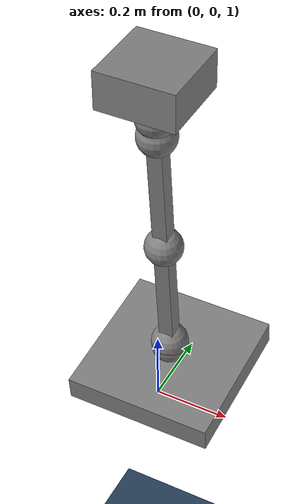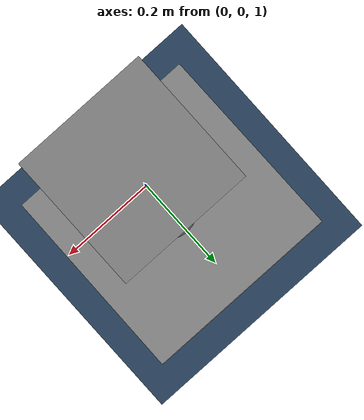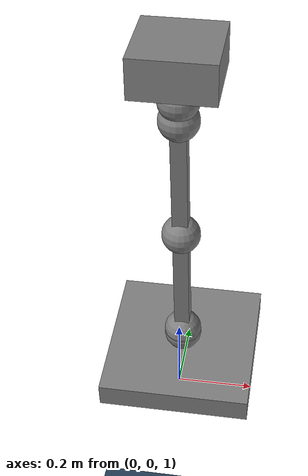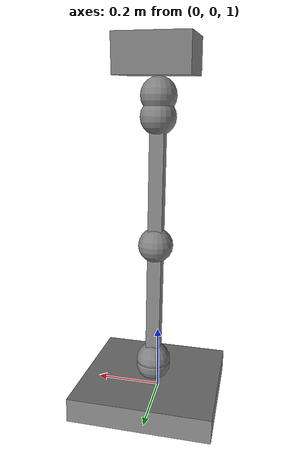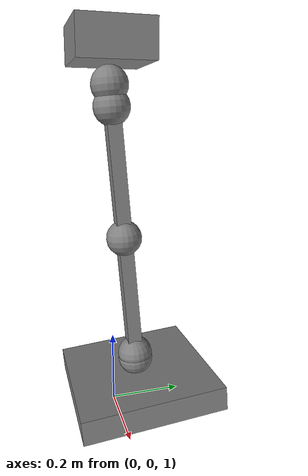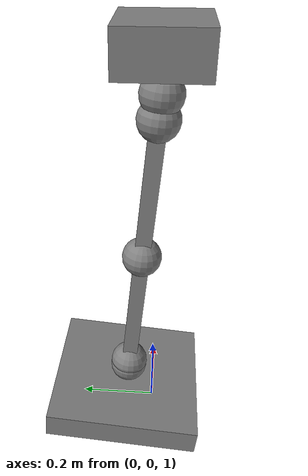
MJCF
<mujoco model="dummy arm scene">

  <include file="setting_option.xml"/>

  <statistic center="0 0 0.2" extent="0.6" />

  <visual>
    <headlight diffuse="0.6 0.6 0.6" ambient="0.3 0.3 0.3" specular="0 0 0" />
    <global azimuth="160" elevation="-20" />
    <rgba haze=".3 .3 .3 1" />
    <quality offsamples="0" />
  </visual>

  <asset>
    <texture type="skybox" builtin="gradient" rgb1="0.6 0.6 0.6" rgb2="0 0 0" width="512" height="512" />
    <texture type="2d" name="groundplane" builtin="checker" mark="edge" rgb1="0.2 0.3 0.4" rgb2="0.1 0.2 0.3" markrgb="0.8 0.8 0.8" width="300" height="300" />
    <material name="groundplane" texture="groundplane" texuniform="true" texrepeat="5 5" reflectance="0.2" />
  </asset>

  <worldbody>
    <geom name="floor" size="0 0 0.05" type="plane" material="groundplane" friction="0.5"/>
    <light directional="true" diffuse=".8 .8 .8" specular=".2 .2 .2" pos="0 0 5" dir="0 0 -1" />
    <body name="dummy" pos="0 0 2" euler="0 0 0">
      <geom type="box" size="0.1 0.1 0.05" contype="0" conaffinity="0" mass="0.0001"/>
      <include file="parts_mjcf/dummy_6dof_leg_torque.xml"/>
    </body>
  </worldbody>
  <include file="dummy_physics.xml"/>
  <include file="actuator_torque.xml" resolve_relative="root"/>
</mujoco>

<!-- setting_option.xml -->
<mujoco>
    <compiler coordinate="local" angle="degree" meshdir="meshes" strippath="false" />
    <option timestep="0.004" iterations="40" solver="Newton" tolerance="1e-10"/>

    <default>
        <joint armature="0.6" frictionloss="0.03" />
    </default>

</mujoco>

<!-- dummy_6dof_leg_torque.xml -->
<mujoco>
    <body name="left_hip_y" pos="0 0 -0.1" euler="5 0 0">
        <joint pos="0 0 0" name="l_hip_y" type="hinge" axis="0 0 1" limited="true" range="-180 180" damping="10" />
        <geom type="sphere" size="0.05 0.05 0.1" mass="0.2"/>
        <body name="left_hip_r" pos="0 0 0" euler="0 0 0">
            <joint pos="0 0 0" name="l_hip_r" type="hinge" axis="1 0 0" limited="true" range="-180 180" damping="10" />
            <geom type="sphere" size="0.05 0.05 0.1" mass="0.2"/>
            <body name="left_hip_p" pos="0 0 -0.055" euler="0 0 0">
                <joint pos="0 0 0" name="l_hip_p" type="hinge" axis="0 1 0" limited="true" range="-180 180" damping="10" />
                <geom type="sphere" size="0.05 0.05 0.1" mass="0.2"/>
                <body name="left_leg1" pos="0 0 -0.1775" euler="0 0 0">
                    <geom type="box" size="0.02 0.02 0.1775" mass="0.0"/>
                    <body name="left_knee_p" pos="0 0 -0.1775" euler="0 0 0">
                        <geom type="sphere" size="0.05" mass="0.2"/>
                        <joint pos="0 0 0" name="l_knee_p" type="hinge" axis="0 1 0" limited="true" range="-180 180" damping="10" />
                        <body name="left_leg2" pos="0 0 -0.1775" euler="0 0 0">
                            <geom type="box" size="0.02 0.02 0.1775" mass="0.0"/>
                                <body name="left_ankle_r" pos="0 0 -0.1775" euler="0 0 0">
                                    <joint pos="0 0 0" name="l_ankle_r" type="hinge" axis="1 0 0" limited="true" range="-180 180" damping="10" />
                                    <geom type="sphere" size="0.05 0.05 0.1" mass="0.2"/>
                                    <body name="left_ankle_p" pos="0 0 -0.015" euler="0 0 0">
                                        <joint pos="0 0 0" name="l_ankle_p" type="hinge" axis="0 1 0" limited="true" range="-180 180" damping="10" />
                                        <geom type="sphere" size="0.05 0.05 0.1" mass="0.2"/>
                                        <body name="left_leg3" pos="0 0 -0.034" euler="0 0 0">
                                            <geom type="box" size="0.02 0.02 0.034" mass="0.0"/>
                                            <body name="foot" pos="0 0 -0.034" euler="0 0 0">
                                                <geom type="box" size="0.2 0.2 0.034" mass="0.5"/>
                                            </body>
                                        </body>
                                    </body>
                                </body>

                        </body>
                    </body>
                </body>
            </body>
        </body>
    </body>
</mujoco>

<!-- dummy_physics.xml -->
<mujoco>
    <contact>
        <exclude body1="left_hip_p" body2="left_hip_r" />
        <exclude body1="left_hip_p" body2="left_hip_y" />
        <exclude body1="left_hip_r" body2="left_hip_y" />

        <exclude body1="left_leg1" body2="left_hip_r" />
        <exclude body1="left_leg1" body2="left_hip_p" />
        <exclude body1="left_leg1" body2="left_hip_y" />

        <exclude body1="left_leg2" body2="left_ankle_r" />
        <exclude body1="left_leg2" body2="left_ankle_p" />
        <exclude body1="left_leg2" body2="left_leg3" />

        <exclude body1="left_leg3" body2="left_ankle_r" />
        <exclude body1="left_leg3" body2="left_ankle_p" />

    </contact>
</mujoco>

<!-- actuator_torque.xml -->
<mujoco>
    <actuator>
        <general name="l_hip_y" ctrlrange="-50 50" joint="l_hip_y"/>
        <general name="l_hip_r" ctrlrange="-50 50" joint="l_hip_r"/>
        <general name="l_hip_p" ctrlrange="-50 50" joint="l_hip_p"/>
        <general name="l_knee_p" ctrlrange="-50 50" joint="l_knee_p"/>
         <general name="l_ankle_r" ctrlrange="-50 50" joint="l_ankle_r"/>
        <general name="l_ankle_p" ctrlrange="-50 50" joint="l_ankle_p"/>
    </actuator>
</mujoco>
